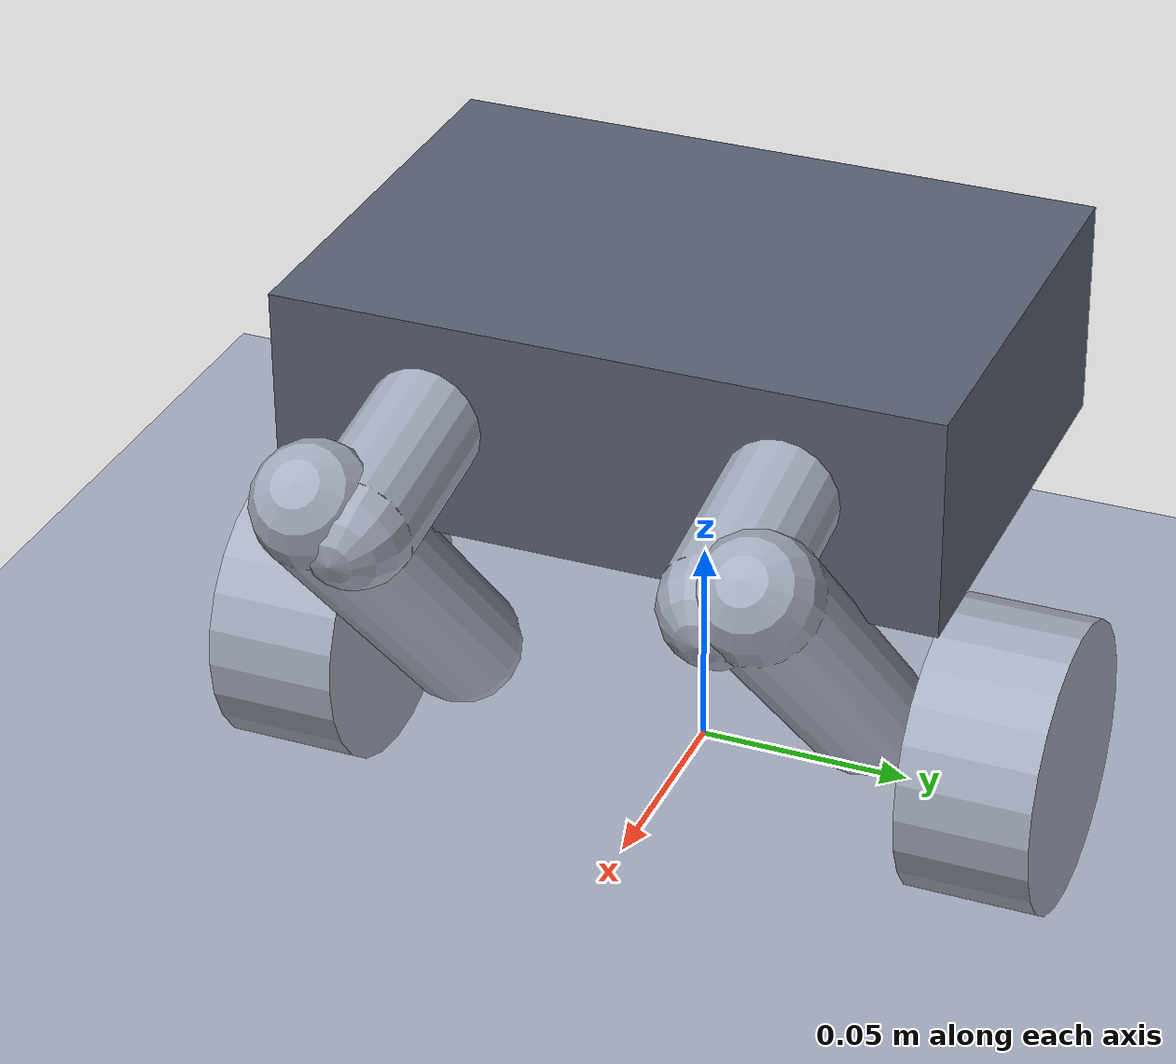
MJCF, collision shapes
<mujoco model="wheelbot_nominal">
  <!-- Nominal model: source URDF topology plus the current QD4310 limit. -->
  <compiler angle="radian" meshdir="../../机械资料/01_灯哥小型轮足/02_Seeed官方URDF_STL/meshes" autolimits="true"/>
  <option timestep="0.002" integrator="implicitfast" gravity="0 0 -9.81"/>

  <visual>
    <global offwidth="640" offheight="480"/>
    <quality shadowsize="2048"/>
    <headlight ambient="0.28 0.28 0.28" diffuse="0.65 0.65 0.65" specular="0.15 0.15 0.15"/>
  </visual>

  <default>
    <joint damping="0.04" armature="0.0001"/>
    <geom condim="3" friction="0.8 0.02 0.01" rgba="0.65 0.68 0.75 1"/>
    <motor ctrllimited="true"/>
  </default>

  <asset>
    <texture name="skybox_texture" type="skybox" builtin="gradient" rgb1="0.12 0.16 0.22" rgb2="0.015 0.02 0.03" width="512" height="512"/>
    <texture name="ground_texture" type="2d" builtin="checker" rgb1="0.22 0.24 0.28" rgb2="0.10 0.11 0.14" width="256" height="256"/>
    <material name="ground_material" texture="ground_texture" texrepeat="8 8" reflectance="0.12"/>
    <material name="robot_material" rgba="0.792 0.820 0.933 1" specular="0.35" shininess="0.45"/>
    <material name="collision_material" rgba="0.18 0.38 0.62 1"/>
    <mesh name="base_mesh" file="base_link.STL"/>
    <mesh name="left_thigh_mesh" file="LT_link.STL"/>
    <mesh name="left_calf_mesh" file="LC_link.STL"/>
    <mesh name="left_wheel_mesh" file="LW_link.STL"/>
    <mesh name="right_thigh_mesh" file="RT_link.STL"/>
    <mesh name="right_calf_mesh" file="RC_link.STL"/>
    <mesh name="right_wheel_mesh" file="RW__link.STL"/>
  </asset>

  <worldbody>
    <geom name="ground" type="plane" size="2 2 0.05" pos="0 0 0" material="ground_material"/>
    <light name="key_light" directional="true" pos="0.4 -0.6 0.8" dir="-0.2 0.3 -1" diffuse="0.85 0.85 0.85" specular="0.35 0.35 0.35" castshadow="true"/>
    <camera name="inspection_view" mode="targetbody" target="base_link" pos="0.34 -0.42 0.24"/>
    <!-- Zero-joint pose: wheel envelope is tangent to the z=0 ground plane. -->
    <body name="base_link" pos="0 0 0.106744">
      <freejoint name="base_free"/>
      <!-- Source URDF inertial data; fullinertia order is ixx iyy izz ixy ixz iyz. -->
      <inertial pos="0.0061304 0.0002476 -0.0093676" mass="0.266" fullinertia="0.0006309 0.0003008 0.0007489 0.0000006 -0.0000468 0.0000003"/>
      <geom name="base_visual" type="mesh" mesh="base_mesh" material="robot_material" contype="0" conaffinity="0"/>
      <!-- Only the wheels contact the ground in this first contact baseline. -->
      <geom name="base_collision" type="box" pos="0.01 0 0" size="0.052 0.075 0.025" contype="0" conaffinity="0" rgba="0.35 0.38 0.45 1"/>
      <site name="imu" pos="0 0 0"/>

      <body name="left_thigh" pos="0.037193 0.04014 0.00555" euler="0 -1.3914 0">
        <joint name="LT_joint" type="hinge" axis="0 -1 0" range="-1.3479 0.3363"/>
        <inertial pos="0.0012701 0.0040620 -0.0190086" mass="0.008" fullinertia="0.0000041 0.0000046 0.000000505 0 0.0000002 0.0000001"/>
        <geom name="left_thigh_visual" type="mesh" mesh="left_thigh_mesh" material="robot_material" contype="0" conaffinity="0"/>
        <geom name="left_thigh_collision" type="capsule" fromto="0 0 0 0 0 -0.06" size="0.013" contype="0" conaffinity="0"/>

        <body name="left_calf" pos="0.004006 0.00825 -0.05996" euler="3.141593 0.970968 3.141593">
          <joint name="LC_joint" type="hinge" axis="0 -1 0" range="-0.29147 1.25"/>
          <inertial pos="0.0013809 0.0047027 -0.0690315" mass="0.0166292" fullinertia="0.0000192606315320937 0.0000199807316204063 0.00000155379596081475 -0.00000000882655659688194 -0.000000355356649539172 0.000000441228359669666"/>
          <geom name="left_calf_visual" type="mesh" mesh="left_calf_mesh" material="robot_material" contype="0" conaffinity="0"/>
          <geom name="left_calf_collision" type="capsule" fromto="0 0 0 0 0 -0.10" size="0.014" contype="0" conaffinity="0"/>

          <body name="left_wheel" pos="0.002 0.024 -0.09998" euler="0 -0.779220 0">
            <joint name="LW_joint" type="hinge" axis="0 1 0"/>
            <inertial pos="0 0.0083246 0" mass="0.0559681585451639" fullinertia="0.0000121 0.0000209 0.0000121 0 0 0"/>
            <geom name="left_wheel_visual" type="mesh" mesh="left_wheel_mesh" material="robot_material" contype="0" conaffinity="0"/>
            <geom name="left_wheel_collision" type="cylinder" pos="0 0.009 0" quat="0.707107 0.707107 0 0" size="0.033 0.015"/>
          </body>
        </body>
      </body>

      <body name="right_thigh" pos="0.037193 -0.03976 0.00555" euler="0 -1.3914 0">
        <joint name="RT_joint" type="hinge" axis="0 1 0" range="-0.3363 1.3479"/>
        <!-- Same minimal rigid-body consistency correction as left_thigh. -->
        <inertial pos="0.00127013 -0.0040620 -0.0190086" mass="0.008" fullinertia="0.0000041 0.0000046 0.000000505 0 0.0000002 0.0000001"/>
        <geom name="right_thigh_visual" type="mesh" mesh="right_thigh_mesh" material="robot_material" contype="0" conaffinity="0"/>
        <geom name="right_thigh_collision" type="capsule" fromto="0 0 0 0 0 -0.06" size="0.013" contype="0" conaffinity="0"/>

        <body name="right_calf" pos="0.004006 -0.00825 -0.05996" euler="-3.141593 1.010970 -3.141593">
          <joint name="RC_joint" type="hinge" axis="0 1 0" range="-1.25 0.29147"/>
          <inertial pos="-0.0013809 -0.0047027 -0.0690315" mass="0.0166292" fullinertia="0.0000240 0.0000245 0.0000016 0 0.0000004 -0.00000006"/>
          <geom name="right_calf_visual" type="mesh" mesh="right_calf_mesh" material="robot_material" contype="0" conaffinity="0"/>
          <geom name="right_calf_collision" type="capsule" fromto="0 0 0 0 0 -0.10" size="0.014" contype="0" conaffinity="0"/>

          <body name="right_wheel" pos="-0.002 -0.024 -0.09998" euler="0 -0.739217 0">
            <joint name="RW_joint" type="hinge" axis="0 -1 0"/>
            <inertial pos="0 -0.0083246 0" mass="0.0559681585451639" fullinertia="0.0000121 0.0000209 0.0000121 0 0 0"/>
            <geom name="right_wheel_visual" type="mesh" mesh="right_wheel_mesh" contype="0" conaffinity="0"/>
            <geom name="right_wheel_collision" type="cylinder" pos="0 -0.009 0" quat="0.707107 0.707107 0 0" size="0.033 0.015"/>
          </body>
        </body>
      </body>
    </body>
  </worldbody>

  <keyframe>
    <!-- Source-URDF zero-joint pose, placed with both wheel envelopes on ground. -->
    <key name="nominal_stand" qpos="0 0 0.106744 1 0 0 0 0 0 0 0 0 0"/>
  </keyframe>

  <actuator>
    <position name="ha8_left_thigh" joint="LT_joint" kp="8" ctrlrange="-1.3479 0.3363" forcerange="-2.45 2.45"/>
    <position name="ha8_left_calf" joint="LC_joint" kp="8" ctrlrange="-0.29147 1.25" forcerange="-2.45 2.45"/>
    <position name="ha8_right_thigh" joint="RT_joint" kp="8" ctrlrange="-0.3363 1.3479" forcerange="-2.45 2.45"/>
    <position name="ha8_right_calf" joint="RC_joint" kp="8" ctrlrange="-1.25 0.29147" forcerange="-2.45 2.45"/>
    <velocity name="qd4310_left_wheel" joint="LW_joint" kv="0.15" ctrlrange="-5.235988 5.235988" forcerange="-0.446 0.446"/>
    <velocity name="qd4310_right_wheel" joint="RW_joint" kv="0.15" ctrlrange="-5.235988 5.235988" forcerange="-0.446 0.446"/>
  </actuator>

  <sensor>
    <framequat name="base_orientation" objtype="site" objname="imu"/>
    <gyro name="base_gyro" site="imu"/>
    <accelerometer name="base_accel" site="imu"/>
    <jointpos name="left_thigh_pos" joint="LT_joint"/>
    <jointpos name="left_calf_pos" joint="LC_joint"/>
    <jointpos name="right_thigh_pos" joint="RT_joint"/>
    <jointpos name="right_calf_pos" joint="RC_joint"/>
    <jointpos name="left_wheel_pos" joint="LW_joint"/>
    <jointpos name="right_wheel_pos" joint="RW_joint"/>
    <jointvel name="left_thigh_vel" joint="LT_joint"/>
    <jointvel name="left_calf_vel" joint="LC_joint"/>
    <jointvel name="right_thigh_vel" joint="RT_joint"/>
    <jointvel name="right_calf_vel" joint="RC_joint"/>
    <jointvel name="left_wheel_vel" joint="LW_joint"/>
    <jointvel name="right_wheel_vel" joint="RW_joint"/>
  </sensor>
</mujoco>
